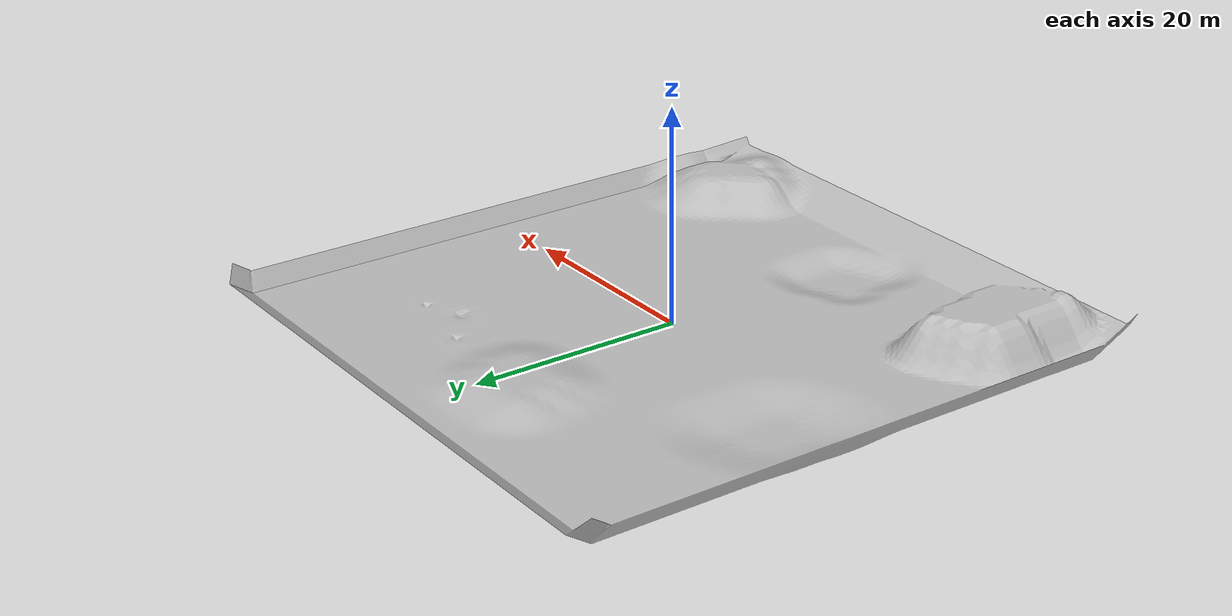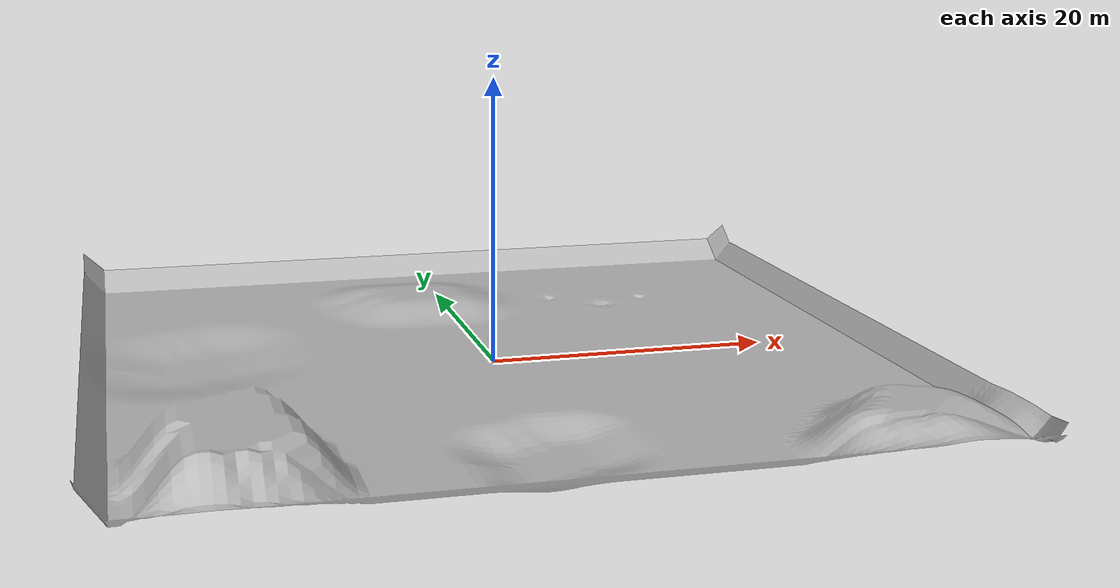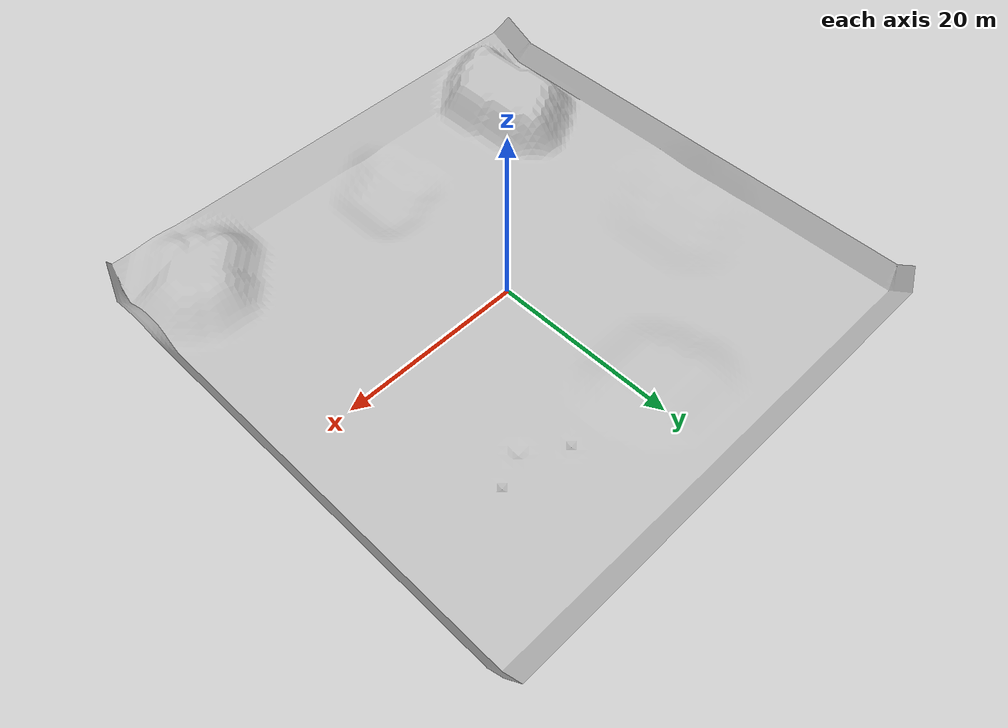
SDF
<?xml version="1.0" ?>
<sdf version="1.6">
  <model name="outdoor_1">
    <pose>0 0 0 0 0 0</pose>
    <static>true</static>
    <link name="body">
      <visual name="visual">
        <geometry>
          <mesh><uri>model://outdoor_1/media/outdoor1_texture4.dae</uri></mesh>
        </geometry>
      </visual>
      <collision name="collision">
        <geometry>
          <mesh><uri>model://outdoor_1/media/outdoor1_texture4.dae</uri></mesh>
        </geometry>
      </collision>
    </link>
  </model>
</sdf>
